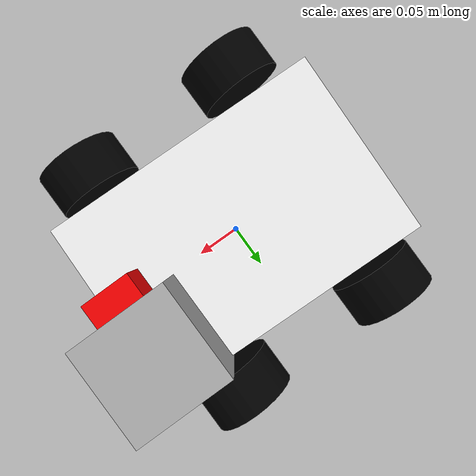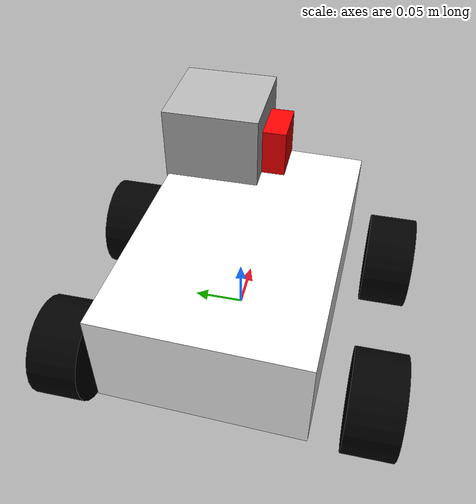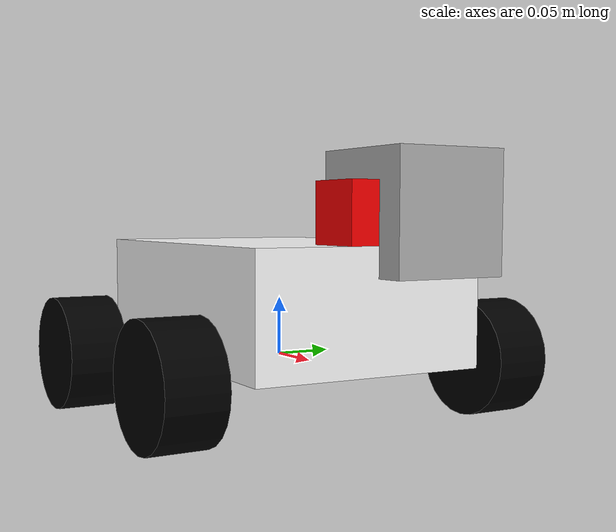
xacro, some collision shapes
<?xml version="1.0"?>

<robot xmlns:xacro="http://www.ros.org/wiki/xacro"
	xmlns:sensor="http://playerstage.sourceforge.net/gazebo/xmlschema/#sensor"
	xmlns:controller="http://playerstage.sourceforge.net/gazebo/xmlschema/#controller"
	xmlns:interface="http://playerstage.sourceforge.net/gazebo/xmlschema/#interface" name="robot1_xacro">

	<xacro:property name="length_wheel" value="0.05" />
	<xacro:property name="radius_wheel" value="0.05" />
	<xacro:property name="camera_link" value="0.05" />
	<xacro:macro name="default_inertial" params="mass">
		<inertial>
			<mass value="${mass}" />
			<inertia ixx="1.0" ixy="0.0" ixz="0.0" iyy="1.0" iyz="0.0" izz="1.0" />
		</inertial>
	</xacro:macro>

	<link name="base_footprint">
		<visual>
			<geometry>
				<box size="0.001 0.001 0.001" />
			</geometry>
			<origin rpy="0 0 0" xyz="0 0 0" />
		</visual>
		<xacro:default_inertial mass="0.0001" />
	</link>
	<xacro:include filename="$(find smartcar_description)/urdf/robot.gazebo" />

	<gazebo reference="base_footprint">
		<material>Gazebo/Green</material>
		<turnGravityOff>false</turnGravityOff>
	</gazebo>

	<joint name="base_footprint_joint" type="fixed">
		<origin xyz="0 0 0" />
		<parent link="base_footprint" />
		<child link="base_link" />
	</joint>

	<link name="base_link">
		<visual>
			<geometry>
				<box size="0.2 .3 .1" />
			</geometry>
			<origin rpy="0 0 1.54" xyz="0 0 0.05" />
			<material name="white">
				<color rgba="1 1 1 1" />
			</material>
		</visual>
		<collision>
			<geometry>
				<box size="0.2 .3 0.1" />
			</geometry>
		</collision>
		<xacro:default_inertial mass="10" />
	</link>

	<link name="wheel_1">
		<visual>
			<geometry>
				<cylinder length="${length_wheel}" radius="${radius_wheel}" />
			</geometry>
			<origin rpy="0 0 0" xyz="0 0 0" />
			<material name="black">
				<color rgba="0 0 0 1" />
			</material>
		</visual>
		<collision>
			<geometry>
				<cylinder length="${length_wheel}" radius="${radius_wheel}" />
			</geometry>
		</collision>
		<xacro:default_inertial mass="1" />
	</link>

	<link name="wheel_2">
		<visual>
			<geometry>
				<cylinder length="${length_wheel}" radius="${radius_wheel}" />
			</geometry>
			<origin rpy="0 0 0" xyz="0 0 0" />
			<material name="black" />
		</visual>
		<collision>
			<geometry>
				<cylinder length="${length_wheel}" radius="${radius_wheel}" />
			</geometry>
		</collision>
		<xacro:default_inertial mass="1" />

	</link>

	<link name="wheel_3">
		<visual>
			<geometry>
				<cylinder length="${length_wheel}" radius="${radius_wheel}" />
			</geometry>

			<origin rpy="0 0 0" xyz="0 0 0" />
			<material name="black" />
		</visual>
		<collision>
			<geometry>
				<cylinder length="${length_wheel}" radius="${radius_wheel}" />
			</geometry>
		</collision>
		<xacro:default_inertial mass="1" />
	</link>

	<link name="wheel_4">
		<visual>
			<geometry>
				<cylinder length="${length_wheel}" radius="${radius_wheel}" />
			</geometry>
			<origin rpy="0 0 0" xyz="0 0 0" />
			<material name="black" />
		</visual>
		<collision>
			<geometry>
				<cylinder length="${length_wheel}" radius="${radius_wheel}" />
			</geometry>
		</collision>
		<xacro:default_inertial mass="1" />

	</link>

	<joint name="base_to_wheel1" type="continuous">
		<parent link="base_link" />
		<child link="wheel_1" />
		<origin rpy="1.5707 0 0" xyz="0.1 0.15 0" />
		<axis xyz="0 0 1" />
	</joint>
        <transmission name="base_to_wheel1_joint_trans">
            <type>transmission_interface/SimpleTransmission</type>
            <joint name="base_to_wheel1" >
                <hardwareInterface>hardware_interface/VelocityJointInterface</hardwareInterface>
            </joint>
            <actuator name="base_to_wheel1_joint_motor">
                <hardwareInterface>hardware_interface/VelocityJointInterface</hardwareInterface>
                <mechanicalReduction>1</mechanicalReduction>
            </actuator>
        </transmission>

	<joint name="base_to_wheel2" type="continuous">
		<axis xyz="0 0 1" />
		<anchor xyz="0 0 0" />
		<limit effort="100" velocity="100" />
		<parent link="base_link" />
		<child link="wheel_2" />
		<origin rpy="1.5707 0 0" xyz="-0.1 0.15 0" />
	</joint>

        <transmission name="base_to_wheel2_joint_trans">
            <type>transmission_interface/SimpleTransmission</type>
            <joint name="base_to_wheel2" >
                <hardwareInterface>hardware_interface/VelocityJointInterface</hardwareInterface>
            </joint>
            <actuator name="base_to_wheel2_joint_motor">
                <hardwareInterface>hardware_interface/VelocityJointInterface</hardwareInterface>
                <mechanicalReduction>1</mechanicalReduction>
            </actuator>
        </transmission>

	<joint name="base_to_wheel3" type="continuous">
		<parent link="base_link" />
		<axis xyz="0 0 1" />
		<child link="wheel_3" />
		<origin rpy="1.5707 0 0" xyz="0.1 -0.15 0" />
	</joint>

        <transmission name="base_to_wheel3_joint_trans">
            <type>transmission_interface/SimpleTransmission</type>
            <joint name="base_to_wheel3" >
                <hardwareInterface>hardware_interface/VelocityJointInterface</hardwareInterface>
            </joint>
            <actuator name="base_to_wheel3_joint_motor">
                <hardwareInterface>hardware_interface/VelocityJointInterface</hardwareInterface>
                <mechanicalReduction>1</mechanicalReduction>
            </actuator>
        </transmission>

	<joint name="base_to_wheel4" type="continuous">
		<parent link="base_link" />
		<axis xyz="0 0 1" />
		<child link="wheel_4" />
		<origin rpy="1.5707 0 0" xyz="-0.1 -0.15 0" />
	</joint>

        <transmission name="base_to_wheel4_joint_trans">
            <type>transmission_interface/SimpleTransmission</type>
            <joint name="base_to_wheel4" >
                <hardwareInterface>hardware_interface/VelocityJointInterface</hardwareInterface>
            </joint>
            <actuator name="base_to_wheel4_joint_motor">
                <hardwareInterface>hardware_interface/VelocityJointInterface</hardwareInterface>
                <mechanicalReduction>1</mechanicalReduction>
            </actuator>
        </transmission>

	<joint name="camera_joint" type="fixed">
		<axis xyz="0 1 0" />
		<origin xyz="0.125 0 0.125" rpy="0 0 0" />
		<parent link="base_link" />
		<child link="camera_link" />
	</joint>

	<!-- Camera -->
	<link name="camera_link">
		<collision>
			<origin xyz="0 0 0" rpy="0 0 0" />
			<geometry>
				<box size="0.05 0.05 0.05" />
			</geometry>
		</collision>

		<visual>
			<origin xyz="0 0 0" rpy="0 0 0" />
			<geometry>
				<box size="0.05 0.05 0.05" />
			</geometry>
			<material name="red">
				<color rgba="1 0 0 1" />
			</material>
		</visual>

		<inertial>
			<mass value="1e-5" />
			<origin xyz="0 0 0" rpy="0 0 0" />
			<inertia ixx="1e-6" ixy="0" ixz="0" iyy="1e-6" iyz="0" izz="1e-6" />
		</inertial>
	</link>

	<joint name="hokuyo_joint" type="fixed">
		<axis xyz="0 1 0" />
		<origin xyz="0.125 0.05 0.125" rpy="0 0 0" />
		<parent link="base_link" />
		<child link="hokuyo_link" />
	</joint>

	<!-- Hokuyo Laser -->
	<link name="hokuyo_link">
		<collision>
			<origin xyz="0 0 0" rpy="0 0 0" />
			<geometry>
				<box size="0.1 0.1 0.1" />
			</geometry>
		</collision>

		<visual>
			<origin xyz="0 0 0" rpy="0 0 0" />
			<geometry>
				<mesh filename="package://smartcar_description/urdf/hokuyo.dae" />
			</geometry>
		</visual>

		<inertial>
			<mass value="1e-5" />
			<origin xyz="0 0 0" rpy="0 0 0" />
			<inertia ixx="1e-6" ixy="0" ixz="0" iyy="1e-6" iyz="0" izz="1e-6" />
		</inertial>
	</link>

<gazebo>
            <plugin name="differential_drive_controller"
                    filename="libgazebo_ros_diff_drive.so">
                <rosDebugLevel>Debug</rosDebugLevel>
                <publishWheelTF>true</publishWheelTF>
                <robotNamespace>/</robotNamespace>
                <publishTf>1</publishTf>
                <publishWheelJointState>true</publishWheelJointState>
                <alwaysOn>true</alwaysOn>
                <updateRate>100.0</updateRate>
                <legacyMode>true</legacyMode>
                <leftJoint>base_to_wheel1</leftJoint>
                <rightJoint>base_to_wheel2</rightJoint>
                <wheelSeparation>0.8</wheelSeparation>
                <wheelDiameter>${2*radius_wheel}</wheelDiameter>
                <broadcastTF>1</broadcastTF>
                <wheelTorque>80</wheelTorque>
                <wheelAcceleration>3</wheelAcceleration>
                <commandTopic>cmd_vel</commandTopic>
                <odometryFrame>odom</odometryFrame>
                <odometryTopic>odom</odometryTopic>
                <robotBaseFrame>base_link</robotBaseFrame>
            </plugin>
        </gazebo>
</robot>
